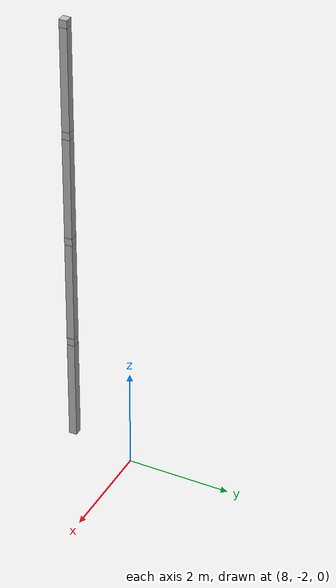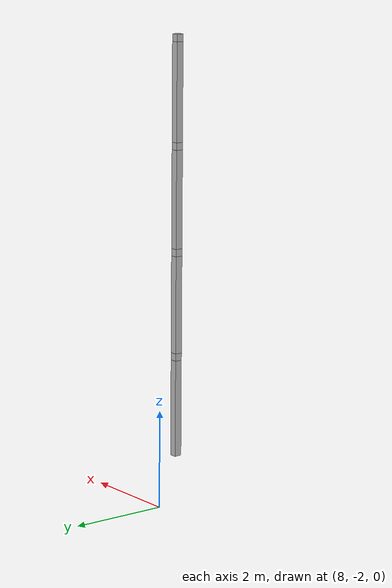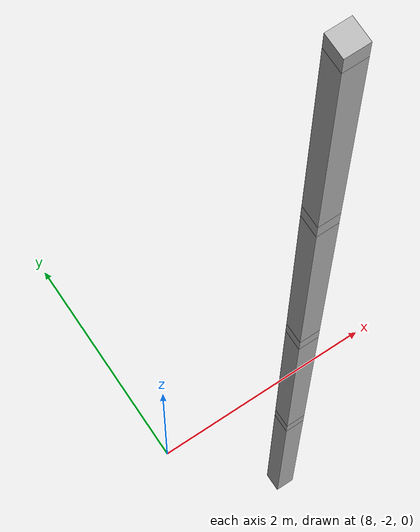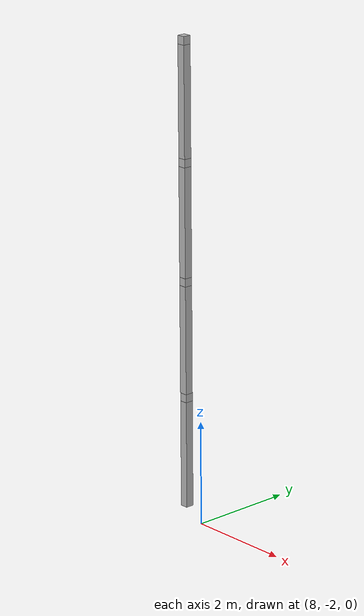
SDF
<sdf version="1.7">
 <world name="default">
  <model name="orthogonal_747_2.000.15_TS">
   <static>1</static>
   <link name="u_link_2_1_7">
    <inertial>
     <mass>1</mass>
     <inertia>
      <ixx>0.166667</ixx>
      <ixy>0</ixy>
      <ixz>0</ixz>
      <iyy>0.166667</iyy>
      <iyz>0</iyz>
      <izz>0.166667</izz>
     </inertia>
    </inertial>
    <pose>15.05 2.15 5.375 0 -0 0</pose>
    <visual name="visual_0">
     <laser_retro>2031</laser_retro>
     <geometry><box><size>0.15 1e-06 0.15</size></box></geometry>
     <material>
      <script><name>Gazebo/Grey</name><uri>file://media/materials/scripts/gazebo.material</uri></script>
      <shader type="pixel"><normal_map>__default__</normal_map></shader>
      <ambient>0.678 0.498 0.659 1</ambient>
      <diffuse>0.7 0.7 0.7 1</diffuse>
      <specular>0.01 0.01 0.01 1</specular>
      <emissive>0 0 0 1</emissive>
     </material>
     <pose>0 -0.075 0 0 -0 0</pose>
     <transparency>1</transparency>
    </visual>
    <visual name="visual_1">
     <laser_retro>2032</laser_retro>
     <geometry><box><size>0.15 1e-06 0.15</size></box></geometry>
     <material>
      <script><name>Gazebo/Grey</name><uri>file://media/materials/scripts/gazebo.material</uri></script>
      <shader type="pixel"><normal_map>__default__</normal_map></shader>
      <ambient>0.447 0.624 0.812 1</ambient>
      <diffuse>0.7 0.7 0.7 1</diffuse>
      <specular>0.01 0.01 0.01 1</specular>
      <emissive>0 0 0 1</emissive>
     </material>
     <pose>0 0.075 0 0 -0 0</pose>
     <transparency>1</transparency>
    </visual>
    <visual name="visual_2">
     <laser_retro>2033</laser_retro>
     <geometry><box><size>0.15 0.15 1e-06</size></box></geometry>
     <material>
      <script><name>Gazebo/Grey</name><uri>file://media/materials/scripts/gazebo.material</uri></script>
      <shader type="pixel"><normal_map>__default__</normal_map></shader>
      <ambient>0.988 0.686 0.243 1</ambient>
      <diffuse>0.7 0.7 0.7 1</diffuse>
      <specular>0.01 0.01 0.01 1</specular>
      <emissive>0 0 0 1</emissive>
     </material>
     <pose>0 0 -0.075 0 -0 0</pose>
     <transparency>1</transparency>
    </visual>
    <visual name="visual_3">
     <laser_retro>2034</laser_retro>
     <geometry><box><size>1e-06 0.15 0.15</size></box></geometry>
     <material>
      <script><name>Gazebo/Grey</name><uri>file://media/materials/scripts/gazebo.material</uri></script>
      <shader type="pixel"><normal_map>__default__</normal_map></shader>
      <ambient>0.988 0.914 0.31 1</ambient>
      <diffuse>0.7 0.7 0.7 1</diffuse>
      <specular>0.01 0.01 0.01 1</specular>
      <emissive>0 0 0 1</emissive>
     </material>
     <pose>0.075 0 0 0 -0 0</pose>
     <transparency>1</transparency>
    </visual>
    <visual name="visual_4">
     <laser_retro>2035</laser_retro>
     <geometry><box><size>0.15 0.15 1e-06</size></box></geometry>
     <material>
      <script><name>Gazebo/Grey</name><uri>file://media/materials/scripts/gazebo.material</uri></script>
      <shader type="pixel"><normal_map>__default__</normal_map></shader>
      <ambient>0.937 0.161 0.161 1</ambient>
      <diffuse>0.7 0.7 0.7 1</diffuse>
      <specular>0.01 0.01 0.01 1</specular>
      <emissive>0 0 0 1</emissive>
     </material>
     <pose>0 0 0.075 0 -0 0</pose>
     <transparency>1</transparency>
    </visual>
    <visual name="visual_5">
     <laser_retro>2036</laser_retro>
     <geometry><box><size>1e-06 0.15 0.15</size></box></geometry>
     <material>
      <script><name>Gazebo/Grey</name><uri>file://media/materials/scripts/gazebo.material</uri></script>
      <shader type="pixel"><normal_map>__default__</normal_map></shader>
      <ambient>0.541 0.886 0.204 1</ambient>
      <diffuse>0.7 0.7 0.7 1</diffuse>
      <specular>0.01 0.01 0.01 1</specular>
      <emissive>0 0 0 1</emissive>
     </material>
     <pose>-0.075 0 0 0 -0 0</pose>
     <transparency>1</transparency>
    </visual>
    <visual name="visual_texture">
     <geometry><box><size>0.149985 0.149985 0.149985</size></box></geometry>
     <material>
      <script>
       <uri>model://BASE_MODELS/simple_block_v2_textured/materials/scripts</uri>
       <uri>model://BASE_MODELS/simple_block_v2_textured/materials/textures</uri>
       <name>metal</name>
      </script>
     </material>
     <laser_retro>2037</laser_retro>
    </visual>
    <collision name="collision">
     <geometry><box><size>0.15 0.15 0.15</size></box></geometry>
     <surface>
      <friction>
       <ode><mu>1</mu><mu2>1</mu2><fdir1>0 0 0</fdir1><slip1>0</slip1><slip2>0</slip2></ode>
       <torsional>
        <coefficient>1</coefficient>
        <patch_radius>0</patch_radius>
        <surface_radius>0</surface_radius>
        <use_patch_radius>1</use_patch_radius>
        <ode><slip>0</slip></ode>
       </torsional>
      </friction>
      <bounce><restitution_coefficient>0</restitution_coefficient><threshold>1e+06</threshold></bounce>
      <contact>
       <collide_without_contact>0</collide_without_contact>
       <collide_without_contact_bitmask>1</collide_without_contact_bitmask>
       <collide_bitmask>1</collide_bitmask>
       <ode>
        <soft_cfm>0</soft_cfm>
        <soft_erp>0.2</soft_erp>
        <kp>1e+13</kp>
        <kd>1</kd>
        <max_vel>0.01</max_vel>
        <min_depth>0</min_depth>
       </ode>
       <bullet>
        <split_impulse>1</split_impulse>
        <split_impulse_penetration_threshold>-0.01</split_impulse_penetration_threshold>
        <soft_cfm>0</soft_cfm>
        <soft_erp>0.2</soft_erp>
        <kp>1e+13</kp>
        <kd>1</kd>
       </bullet>
      </contact>
     </surface>
    </collision>
   </link>
   <link name="z_link_2_1_7">
    <inertial>
     <mass>1</mass>
     <inertia>
      <ixx>0.166667</ixx>
      <ixy>0</ixy>
      <ixz>0</ixz>
      <iyy>0.166667</iyy>
      <iyz>0</iyz>
      <izz>0.166667</izz>
     </inertia>
    </inertial>
    <pose>15.05 2.15 4.3 0 -0 0</pose>
    <visual name="visual_0">
     <laser_retro>2038</laser_retro>
     <geometry><box><size>0.15 1e-06 2</size></box></geometry>
     <material>
      <script><name>Gazebo/Grey</name><uri>file://media/materials/scripts/gazebo.material</uri></script>
      <shader type="pixel"><normal_map>__default__</normal_map></shader>
      <ambient>0.678 0.498 0.659 1</ambient>
      <diffuse>0.7 0.7 0.7 1</diffuse>
      <specular>0.01 0.01 0.01 1</specular>
      <emissive>0 0 0 1</emissive>
     </material>
     <pose>0 -0.075 0 0 -0 0</pose>
     <transparency>1</transparency>
    </visual>
    <visual name="visual_1">
     <laser_retro>2039</laser_retro>
     <geometry><box><size>0.15 1e-06 2</size></box></geometry>
     <material>
      <script><name>Gazebo/Grey</name><uri>file://media/materials/scripts/gazebo.material</uri></script>
      <shader type="pixel"><normal_map>__default__</normal_map></shader>
      <ambient>0.447 0.624 0.812 1</ambient>
      <diffuse>0.7 0.7 0.7 1</diffuse>
      <specular>0.01 0.01 0.01 1</specular>
      <emissive>0 0 0 1</emissive>
     </material>
     <pose>0 0.075 0 0 -0 0</pose>
     <transparency>1</transparency>
    </visual>
    <visual name="visual_2">
     <laser_retro>2040</laser_retro>
     <geometry><box><size>0.15 0.15 1e-06</size></box></geometry>
     <material>
      <script><name>Gazebo/Grey</name><uri>file://media/materials/scripts/gazebo.material</uri></script>
      <shader type="pixel"><normal_map>__default__</normal_map></shader>
      <ambient>0.988 0.686 0.243 1</ambient>
      <diffuse>0.7 0.7 0.7 1</diffuse>
      <specular>0.01 0.01 0.01 1</specular>
      <emissive>0 0 0 1</emissive>
     </material>
     <pose>0 0 -1 0 -0 0</pose>
     <transparency>1</transparency>
    </visual>
    <visual name="visual_3">
     <laser_retro>2041</laser_retro>
     <geometry><box><size>1e-06 0.15 2</size></box></geometry>
     <material>
      <script><name>Gazebo/Grey</name><uri>file://media/materials/scripts/gazebo.material</uri></script>
      <shader type="pixel"><normal_map>__default__</normal_map></shader>
      <ambient>0.988 0.914 0.31 1</ambient>
      <diffuse>0.7 0.7 0.7 1</diffuse>
      <specular>0.01 0.01 0.01 1</specular>
      <emissive>0 0 0 1</emissive>
     </material>
     <pose>0.075 0 0 0 -0 0</pose>
     <transparency>1</transparency>
    </visual>
    <visual name="visual_4">
     <laser_retro>2042</laser_retro>
     <geometry><box><size>0.15 0.15 1e-06</size></box></geometry>
     <material>
      <script><name>Gazebo/Grey</name><uri>file://media/materials/scripts/gazebo.material</uri></script>
      <shader type="pixel"><normal_map>__default__</normal_map></shader>
      <ambient>0.937 0.161 0.161 1</ambient>
      <diffuse>0.7 0.7 0.7 1</diffuse>
      <specular>0.01 0.01 0.01 1</specular>
      <emissive>0 0 0 1</emissive>
     </material>
     <pose>0 0 1 0 -0 0</pose>
     <transparency>1</transparency>
    </visual>
    <visual name="visual_5">
     <laser_retro>2043</laser_retro>
     <geometry><box><size>1e-06 0.15 2</size></box></geometry>
     <material>
      <script><name>Gazebo/Grey</name><uri>file://media/materials/scripts/gazebo.material</uri></script>
      <shader type="pixel"><normal_map>__default__</normal_map></shader>
      <ambient>0.541 0.886 0.204 1</ambient>
      <diffuse>0.7 0.7 0.7 1</diffuse>
      <specular>0.01 0.01 0.01 1</specular>
      <emissive>0 0 0 1</emissive>
     </material>
     <pose>-0.075 0 0 0 -0 0</pose>
     <transparency>1</transparency>
    </visual>
    <visual name="visual_texture">
     <geometry><box><size>0.149985 0.149985 1.9998</size></box></geometry>
     <material>
      <script>
       <uri>model://BASE_MODELS/simple_block_v2_textured/materials/scripts</uri>
       <uri>model://BASE_MODELS/simple_block_v2_textured/materials/textures</uri>
       <name>metal</name>
      </script>
     </material>
     <laser_retro>2044</laser_retro>
    </visual>
    <collision name="collision">
     <geometry><box><size>0.15 0.15 2</size></box></geometry>
     <surface>
      <friction>
       <ode><mu>1</mu><mu2>1</mu2><fdir1>0 0 0</fdir1><slip1>0</slip1><slip2>0</slip2></ode>
       <torsional>
        <coefficient>1</coefficient>
        <patch_radius>0</patch_radius>
        <surface_radius>0</surface_radius>
        <use_patch_radius>1</use_patch_radius>
        <ode><slip>0</slip></ode>
       </torsional>
      </friction>
      <bounce><restitution_coefficient>0</restitution_coefficient><threshold>1e+06</threshold></bounce>
      <contact>
       <collide_without_contact>0</collide_without_contact>
       <collide_without_contact_bitmask>1</collide_without_contact_bitmask>
       <collide_bitmask>1</collide_bitmask>
       <ode>
        <soft_cfm>0</soft_cfm>
        <soft_erp>0.2</soft_erp>
        <kp>1e+13</kp>
        <kd>1</kd>
        <max_vel>0.01</max_vel>
        <min_depth>0</min_depth>
       </ode>
       <bullet>
        <split_impulse>1</split_impulse>
        <split_impulse_penetration_threshold>-0.01</split_impulse_penetration_threshold>
        <soft_cfm>0</soft_cfm>
        <soft_erp>0.2</soft_erp>
        <kp>1e+13</kp>
        <kd>1</kd>
       </bullet>
      </contact>
     </surface>
    </collision>
   </link>
   <link name="u_link_3_1_7">
    <inertial>
     <mass>1</mass>
     <inertia>
      <ixx>0.166667</ixx>
      <ixy>0</ixy>
      <ixz>0</ixz>
      <iyy>0.166667</iyy>
      <iyz>0</iyz>
      <izz>0.166667</izz>
     </inertia>
    </inertial>
    <pose>15.05 2.15 7.525 0 -0 0</pose>
    <visual name="visual_0">
     <laser_retro>2934</laser_retro>
     <geometry><box><size>0.15 1e-06 0.15</size></box></geometry>
     <material>
      <script><name>Gazebo/Grey</name><uri>file://media/materials/scripts/gazebo.material</uri></script>
      <shader type="pixel"><normal_map>__default__</normal_map></shader>
      <ambient>0.678 0.498 0.659 1</ambient>
      <diffuse>0.7 0.7 0.7 1</diffuse>
      <specular>0.01 0.01 0.01 1</specular>
      <emissive>0 0 0 1</emissive>
     </material>
     <pose>0 -0.075 0 0 -0 0</pose>
     <transparency>1</transparency>
    </visual>
    <visual name="visual_1">
     <laser_retro>2935</laser_retro>
     <geometry><box><size>0.15 1e-06 0.15</size></box></geometry>
     <material>
      <script><name>Gazebo/Grey</name><uri>file://media/materials/scripts/gazebo.material</uri></script>
      <shader type="pixel"><normal_map>__default__</normal_map></shader>
      <ambient>0.447 0.624 0.812 1</ambient>
      <diffuse>0.7 0.7 0.7 1</diffuse>
      <specular>0.01 0.01 0.01 1</specular>
      <emissive>0 0 0 1</emissive>
     </material>
     <pose>0 0.075 0 0 -0 0</pose>
     <transparency>1</transparency>
    </visual>
    <visual name="visual_2">
     <laser_retro>2936</laser_retro>
     <geometry><box><size>0.15 0.15 1e-06</size></box></geometry>
     <material>
      <script><name>Gazebo/Grey</name><uri>file://media/materials/scripts/gazebo.material</uri></script>
      <shader type="pixel"><normal_map>__default__</normal_map></shader>
      <ambient>0.988 0.686 0.243 1</ambient>
      <diffuse>0.7 0.7 0.7 1</diffuse>
      <specular>0.01 0.01 0.01 1</specular>
      <emissive>0 0 0 1</emissive>
     </material>
     <pose>0 0 -0.075 0 -0 0</pose>
     <transparency>1</transparency>
    </visual>
    <visual name="visual_3">
     <laser_retro>2937</laser_retro>
     <geometry><box><size>1e-06 0.15 0.15</size></box></geometry>
     <material>
      <script><name>Gazebo/Grey</name><uri>file://media/materials/scripts/gazebo.material</uri></script>
      <shader type="pixel"><normal_map>__default__</normal_map></shader>
      <ambient>0.988 0.914 0.31 1</ambient>
      <diffuse>0.7 0.7 0.7 1</diffuse>
      <specular>0.01 0.01 0.01 1</specular>
      <emissive>0 0 0 1</emissive>
     </material>
     <pose>0.075 0 0 0 -0 0</pose>
     <transparency>1</transparency>
    </visual>
    <visual name="visual_4">
     <laser_retro>2938</laser_retro>
     <geometry><box><size>0.15 0.15 1e-06</size></box></geometry>
     <material>
      <script><name>Gazebo/Grey</name><uri>file://media/materials/scripts/gazebo.material</uri></script>
      <shader type="pixel"><normal_map>__default__</normal_map></shader>
      <ambient>0.937 0.161 0.161 1</ambient>
      <diffuse>0.7 0.7 0.7 1</diffuse>
      <specular>0.01 0.01 0.01 1</specular>
      <emissive>0 0 0 1</emissive>
     </material>
     <pose>0 0 0.075 0 -0 0</pose>
     <transparency>1</transparency>
    </visual>
    <visual name="visual_5">
     <laser_retro>2939</laser_retro>
     <geometry><box><size>1e-06 0.15 0.15</size></box></geometry>
     <material>
      <script><name>Gazebo/Grey</name><uri>file://media/materials/scripts/gazebo.material</uri></script>
      <shader type="pixel"><normal_map>__default__</normal_map></shader>
      <ambient>0.541 0.886 0.204 1</ambient>
      <diffuse>0.7 0.7 0.7 1</diffuse>
      <specular>0.01 0.01 0.01 1</specular>
      <emissive>0 0 0 1</emissive>
     </material>
     <pose>-0.075 0 0 0 -0 0</pose>
     <transparency>1</transparency>
    </visual>
    <visual name="visual_texture">
     <geometry><box><size>0.149985 0.149985 0.149985</size></box></geometry>
     <material>
      <script>
       <uri>model://BASE_MODELS/simple_block_v2_textured/materials/scripts</uri>
       <uri>model://BASE_MODELS/simple_block_v2_textured/materials/textures</uri>
       <name>metal</name>
      </script>
     </material>
     <laser_retro>2940</laser_retro>
    </visual>
    <collision name="collision">
     <geometry><box><size>0.15 0.15 0.15</size></box></geometry>
     <surface>
      <friction>
       <ode><mu>1</mu><mu2>1</mu2><fdir1>0 0 0</fdir1><slip1>0</slip1><slip2>0</slip2></ode>
       <torsional>
        <coefficient>1</coefficient>
        <patch_radius>0</patch_radius>
        <surface_radius>0</surface_radius>
        <use_patch_radius>1</use_patch_radius>
        <ode><slip>0</slip></ode>
       </torsional>
      </friction>
      <bounce><restitution_coefficient>0</restitution_coefficient><threshold>1e+06</threshold></bounce>
      <contact>
       <collide_without_contact>0</collide_without_contact>
       <collide_without_contact_bitmask>1</collide_without_contact_bitmask>
       <collide_bitmask>1</collide_bitmask>
       <ode>
        <soft_cfm>0</soft_cfm>
        <soft_erp>0.2</soft_erp>
        <kp>1e+13</kp>
        <kd>1</kd>
        <max_vel>0.01</max_vel>
        <min_depth>0</min_depth>
       </ode>
       <bullet>
        <split_impulse>1</split_impulse>
        <split_impulse_penetration_threshold>-0.01</split_impulse_penetration_threshold>
        <soft_cfm>0</soft_cfm>
        <soft_erp>0.2</soft_erp>
        <kp>1e+13</kp>
        <kd>1</kd>
       </bullet>
      </contact>
     </surface>
    </collision>
   </link>
   <link name="z_link_3_1_7">
    <inertial>
     <mass>1</mass>
     <inertia>
      <ixx>0.166667</ixx>
      <ixy>0</ixy>
      <ixz>0</ixz>
      <iyy>0.166667</iyy>
      <iyz>0</iyz>
      <izz>0.166667</izz>
     </inertia>
    </inertial>
    <pose>15.05 2.15 6.45 0 -0 0</pose>
    <visual name="visual_0">
     <laser_retro>2941</laser_retro>
     <geometry><box><size>0.15 1e-06 2</size></box></geometry>
     <material>
      <script><name>Gazebo/Grey</name><uri>file://media/materials/scripts/gazebo.material</uri></script>
      <shader type="pixel"><normal_map>__default__</normal_map></shader>
      <ambient>0.678 0.498 0.659 1</ambient>
      <diffuse>0.7 0.7 0.7 1</diffuse>
      <specular>0.01 0.01 0.01 1</specular>
      <emissive>0 0 0 1</emissive>
     </material>
     <pose>0 -0.075 0 0 -0 0</pose>
     <transparency>1</transparency>
    </visual>
    <visual name="visual_1">
     <laser_retro>2942</laser_retro>
     <geometry><box><size>0.15 1e-06 2</size></box></geometry>
     <material>
      <script><name>Gazebo/Grey</name><uri>file://media/materials/scripts/gazebo.material</uri></script>
      <shader type="pixel"><normal_map>__default__</normal_map></shader>
      <ambient>0.447 0.624 0.812 1</ambient>
      <diffuse>0.7 0.7 0.7 1</diffuse>
      <specular>0.01 0.01 0.01 1</specular>
      <emissive>0 0 0 1</emissive>
     </material>
     <pose>0 0.075 0 0 -0 0</pose>
     <transparency>1</transparency>
    </visual>
    <visual name="visual_2">
     <laser_retro>2943</laser_retro>
     <geometry><box><size>0.15 0.15 1e-06</size></box></geometry>
     <material>
      <script><name>Gazebo/Grey</name><uri>file://media/materials/scripts/gazebo.material</uri></script>
      <shader type="pixel"><normal_map>__default__</normal_map></shader>
      <ambient>0.988 0.686 0.243 1</ambient>
      <diffuse>0.7 0.7 0.7 1</diffuse>
      <specular>0.01 0.01 0.01 1</specular>
      <emissive>0 0 0 1</emissive>
     </material>
     <pose>0 0 -1 0 -0 0</pose>
     <transparency>1</transparency>
    </visual>
    <visual name="visual_3">
     <laser_retro>2944</laser_retro>
     <geometry><box><size>1e-06 0.15 2</size></box></geometry>
     <material>
      <script><name>Gazebo/Grey</name><uri>file://media/materials/scripts/gazebo.material</uri></script>
      <shader type="pixel"><normal_map>__default__</normal_map></shader>
      <ambient>0.988 0.914 0.31 1</ambient>
      <diffuse>0.7 0.7 0.7 1</diffuse>
      <specular>0.01 0.01 0.01 1</specular>
      <emissive>0 0 0 1</emissive>
     </material>
     <pose>0.075 0 0 0 -0 0</pose>
     <transparency>1</transparency>
    </visual>
    <visual name="visual_4">
     <laser_retro>2945</laser_retro>
     <geometry><box><size>0.15 0.15 1e-06</size></box></geometry>
     <material>
      <script><name>Gazebo/Grey</name><uri>file://media/materials/scripts/gazebo.material</uri></script>
      <shader type="pixel"><normal_map>__default__</normal_map></shader>
      <ambient>0.937 0.161 0.161 1</ambient>
      <diffuse>0.7 0.7 0.7 1</diffuse>
      <specular>0.01 0.01 0.01 1</specular>
      <emissive>0 0 0 1</emissive>
     </material>
     <pose>0 0 1 0 -0 0</pose>
     <transparency>1</transparency>
    </visual>
    <visual name="visual_5">
     <laser_retro>2946</laser_retro>
     <geometry><box><size>1e-06 0.15 2</size></box></geometry>
     <material>
      <script><name>Gazebo/Grey</name><uri>file://media/materials/scripts/gazebo.material</uri></script>
      <shader type="pixel"><normal_map>__default__</normal_map></shader>
      <ambient>0.541 0.886 0.204 1</ambient>
      <diffuse>0.7 0.7 0.7 1</diffuse>
      <specular>0.01 0.01 0.01 1</specular>
      <emissive>0 0 0 1</emissive>
     </material>
     <pose>-0.075 0 0 0 -0 0</pose>
     <transparency>1</transparency>
    </visual>
    <visual name="visual_texture">
     <geometry><box><size>0.149985 0.149985 1.9998</size></box></geometry>
     <material>
      <script>
       <uri>model://BASE_MODELS/simple_block_v2_textured/materials/scripts</uri>
       <uri>model://BASE_MODELS/simple_block_v2_textured/materials/textures</uri>
       <name>metal</name>
      </script>
     </material>
     <laser_retro>2947</laser_retro>
    </visual>
    <collision name="collision">
     <geometry><box><size>0.15 0.15 2</size></box></geometry>
     <surface>
      <friction>
       <ode><mu>1</mu><mu2>1</mu2><fdir1>0 0 0</fdir1><slip1>0</slip1><slip2>0</slip2></ode>
       <torsional>
        <coefficient>1</coefficient>
        <patch_radius>0</patch_radius>
        <surface_radius>0</surface_radius>
        <use_patch_radius>1</use_patch_radius>
        <ode><slip>0</slip></ode>
       </torsional>
      </friction>
      <bounce><restitution_coefficient>0</restitution_coefficient><threshold>1e+06</threshold></bounce>
      <contact>
       <collide_without_contact>0</collide_without_contact>
       <collide_without_contact_bitmask>1</collide_without_contact_bitmask>
       <collide_bitmask>1</collide_bitmask>
       <ode>
        <soft_cfm>0</soft_cfm>
        <soft_erp>0.2</soft_erp>
        <kp>1e+13</kp>
        <kd>1</kd>
        <max_vel>0.01</max_vel>
        <min_depth>0</min_depth>
       </ode>
       <bullet>
        <split_impulse>1</split_impulse>
        <split_impulse_penetration_threshold>-0.01</split_impulse_penetration_threshold>
        <soft_cfm>0</soft_cfm>
        <soft_erp>0.2</soft_erp>
        <kp>1e+13</kp>
        <kd>1</kd>
       </bullet>
      </contact>
     </surface>
    </collision>
   </link>
   <link name="u_link_4_1_7">
    <inertial>
     <mass>1</mass>
     <inertia>
      <ixx>0.166667</ixx>
      <ixy>0</ixy>
      <ixz>0</ixz>
      <iyy>0.166667</iyy>
      <iyz>0</iyz>
      <izz>0.166667</izz>
     </inertia>
    </inertial>
    <pose>15.05 2.15 9.675 0 -0 0</pose>
    <visual name="visual_0">
     <laser_retro>3837</laser_retro>
     <geometry><box><size>0.15 1e-06 0.15</size></box></geometry>
     <material>
      <script><name>Gazebo/Grey</name><uri>file://media/materials/scripts/gazebo.material</uri></script>
      <shader type="pixel"><normal_map>__default__</normal_map></shader>
      <ambient>0.678 0.498 0.659 1</ambient>
      <diffuse>0.7 0.7 0.7 1</diffuse>
      <specular>0.01 0.01 0.01 1</specular>
      <emissive>0 0 0 1</emissive>
     </material>
     <pose>0 -0.075 0 0 -0 0</pose>
     <transparency>1</transparency>
    </visual>
    <visual name="visual_1">
     <laser_retro>3838</laser_retro>
     <geometry><box><size>0.15 1e-06 0.15</size></box></geometry>
     <material>
      <script><name>Gazebo/Grey</name><uri>file://media/materials/scripts/gazebo.material</uri></script>
      <shader type="pixel"><normal_map>__default__</normal_map></shader>
      <ambient>0.447 0.624 0.812 1</ambient>
      <diffuse>0.7 0.7 0.7 1</diffuse>
      <specular>0.01 0.01 0.01 1</specular>
      <emissive>0 0 0 1</emissive>
     </material>
     <pose>0 0.075 0 0 -0 0</pose>
     <transparency>1</transparency>
    </visual>
    <visual name="visual_2">
     <laser_retro>3839</laser_retro>
     <geometry><box><size>0.15 0.15 1e-06</size></box></geometry>
     <material>
      <script><name>Gazebo/Grey</name><uri>file://media/materials/scripts/gazebo.material</uri></script>
      <shader type="pixel"><normal_map>__default__</normal_map></shader>
      <ambient>0.988 0.686 0.243 1</ambient>
      <diffuse>0.7 0.7 0.7 1</diffuse>
      <specular>0.01 0.01 0.01 1</specular>
      <emissive>0 0 0 1</emissive>
     </material>
     <pose>0 0 -0.075 0 -0 0</pose>
     <transparency>1</transparency>
    </visual>
    <visual name="visual_3">
     <laser_retro>3840</laser_retro>
     <geometry><box><size>1e-06 0.15 0.15</size></box></geometry>
     <material>
      <script><name>Gazebo/Grey</name><uri>file://media/materials/scripts/gazebo.material</uri></script>
      <shader type="pixel"><normal_map>__default__</normal_map></shader>
      <ambient>0.988 0.914 0.31 1</ambient>
      <diffuse>0.7 0.7 0.7 1</diffuse>
      <specular>0.01 0.01 0.01 1</specular>
      <emissive>0 0 0 1</emissive>
     </material>
     <pose>0.075 0 0 0 -0 0</pose>
     <transparency>1</transparency>
    </visual>
    <visual name="visual_4">
     <laser_retro>3841</laser_retro>
     <geometry><box><size>0.15 0.15 1e-06</size></box></geometry>
     <material>
      <script><name>Gazebo/Grey</name><uri>file://media/materials/scripts/gazebo.material</uri></script>
      <shader type="pixel"><normal_map>__default__</normal_map></shader>
      <ambient>0.937 0.161 0.161 1</ambient>
      <diffuse>0.7 0.7 0.7 1</diffuse>
      <specular>0.01 0.01 0.01 1</specular>
      <emissive>0 0 0 1</emissive>
     </material>
     <pose>0 0 0.075 0 -0 0</pose>
     <transparency>1</transparency>
    </visual>
    <visual name="visual_5">
     <laser_retro>3842</laser_retro>
     <geometry><box><size>1e-06 0.15 0.15</size></box></geometry>
     <material>
      <script><name>Gazebo/Grey</name><uri>file://media/materials/scripts/gazebo.material</uri></script>
      <shader type="pixel"><normal_map>__default__</normal_map></shader>
      <ambient>0.541 0.886 0.204 1</ambient>
      <diffuse>0.7 0.7 0.7 1</diffuse>
      <specular>0.01 0.01 0.01 1</specular>
      <emissive>0 0 0 1</emissive>
     </material>
     <pose>-0.075 0 0 0 -0 0</pose>
     <transparency>1</transparency>
    </visual>
    <visual name="visual_texture">
     <geometry><box><size>0.149985 0.149985 0.149985</size></box></geometry>
     <material>
      <script>
       <uri>model://BASE_MODELS/simple_block_v2_textured/materials/scripts</uri>
       <uri>model://BASE_MODELS/simple_block_v2_textured/materials/textures</uri>
       <name>metal</name>
      </script>
     </material>
     <laser_retro>3843</laser_retro>
    </visual>
    <collision name="collision">
     <geometry><box><size>0.15 0.15 0.15</size></box></geometry>
     <surface>
      <friction>
       <ode><mu>1</mu><mu2>1</mu2><fdir1>0 0 0</fdir1><slip1>0</slip1><slip2>0</slip2></ode>
       <torsional>
        <coefficient>1</coefficient>
        <patch_radius>0</patch_radius>
        <surface_radius>0</surface_radius>
        <use_patch_radius>1</use_patch_radius>
        <ode><slip>0</slip></ode>
       </torsional>
      </friction>
      <bounce><restitution_coefficient>0</restitution_coefficient><threshold>1e+06</threshold></bounce>
      <contact>
       <collide_without_contact>0</collide_without_contact>
       <collide_without_contact_bitmask>1</collide_without_contact_bitmask>
       <collide_bitmask>1</collide_bitmask>
       <ode>
        <soft_cfm>0</soft_cfm>
        <soft_erp>0.2</soft_erp>
        <kp>1e+13</kp>
        <kd>1</kd>
        <max_vel>0.01</max_vel>
        <min_depth>0</min_depth>
       </ode>
       <bullet>
        <split_impulse>1</split_impulse>
        <split_impulse_penetration_threshold>-0.01</split_impulse_penetration_threshold>
        <soft_cfm>0</soft_cfm>
        <soft_erp>0.2</soft_erp>
        <kp>1e+13</kp>
        <kd>1</kd>
       </bullet>
      </contact>
     </surface>
    </collision>
   </link>
   <link name="z_link_4_1_7">
    <inertial>
     <mass>1</mass>
     <inertia>
      <ixx>0.166667</ixx>
      <ixy>0</ixy>
      <ixz>0</ixz>
      <iyy>0.166667</iyy>
      <iyz>0</iyz>
      <izz>0.166667</izz>
     </inertia>
    </inertial>
    <pose>15.05 2.15 8.6 0 -0 0</pose>
    <visual name="visual_0">
     <laser_retro>3844</laser_retro>
     <geometry><box><size>0.15 1e-06 2</size></box></geometry>
     <material>
      <script><name>Gazebo/Grey</name><uri>file://media/materials/scripts/gazebo.material</uri></script>
      <shader type="pixel"><normal_map>__default__</normal_map></shader>
      <ambient>0.678 0.498 0.659 1</ambient>
      <diffuse>0.7 0.7 0.7 1</diffuse>
      <specular>0.01 0.01 0.01 1</specular>
      <emissive>0 0 0 1</emissive>
     </material>
     <pose>0 -0.075 0 0 -0 0</pose>
     <transparency>1</transparency>
    </visual>
    <visual name="visual_1">
     <laser_retro>3845</laser_retro>
     <geometry><box><size>0.15 1e-06 2</size></box></geometry>
     <material>
      <script><name>Gazebo/Grey</name><uri>file://media/materials/scripts/gazebo.material</uri></script>
      <shader type="pixel"><normal_map>__default__</normal_map></shader>
      <ambient>0.447 0.624 0.812 1</ambient>
      <diffuse>0.7 0.7 0.7 1</diffuse>
      <specular>0.01 0.01 0.01 1</specular>
      <emissive>0 0 0 1</emissive>
     </material>
     <pose>0 0.075 0 0 -0 0</pose>
     <transparency>1</transparency>
    </visual>
    <visual name="visual_2">
     <laser_retro>3846</laser_retro>
     <geometry><box><size>0.15 0.15 1e-06</size></box></geometry>
     <material>
      <script><name>Gazebo/Grey</name><uri>file://media/materials/scripts/gazebo.material</uri></script>
      <shader type="pixel"><normal_map>__default__</normal_map></shader>
      <ambient>0.988 0.686 0.243 1</ambient>
      <diffuse>0.7 0.7 0.7 1</diffuse>
      <specular>0.01 0.01 0.01 1</specular>
      <emissive>0 0 0 1</emissive>
     </material>
     <pose>0 0 -1 0 -0 0</pose>
     <transparency>1</transparency>
    </visual>
    <visual name="visual_3">
     <laser_retro>3847</laser_retro>
     <geometry><box><size>1e-06 0.15 2</size></box></geometry>
     <material>
      <script><name>Gazebo/Grey</name><uri>file://media/materials/scripts/gazebo.material</uri></script>
      <shader type="pixel"><normal_map>__default__</normal_map></shader>
      <ambient>0.988 0.914 0.31 1</ambient>
      <diffuse>0.7 0.7 0.7 1</diffuse>
      <specular>0.01 0.01 0.01 1</specular>
      <emissive>0 0 0 1</emissive>
     </material>
     <pose>0.075 0 0 0 -0 0</pose>
     <transparency>1</transparency>
    </visual>
    <visual name="visual_4">
     <laser_retro>3848</laser_retro>
     <geometry><box><size>0.15 0.15 1e-06</size></box></geometry>
     <material>
      <script><name>Gazebo/Grey</name><uri>file://media/materials/scripts/gazebo.material</uri></script>
      <shader type="pixel"><normal_map>__default__</normal_map></shader>
      <ambient>0.937 0.161 0.161 1</ambient>
      <diffuse>0.7 0.7 0.7 1</diffuse>
      <specular>0.01 0.01 0.01 1</specular>
      <emissive>0 0 0 1</emissive>
     </material>
     <pose>0 0 1 0 -0 0</pose>
     <transparency>1</transparency>
    </visual>
    <visual name="visual_5">
     <laser_retro>3849</laser_retro>
     <geometry><box><size>1e-06 0.15 2</size></box></geometry>
     <material>
      <script><name>Gazebo/Grey</name><uri>file://media/materials/scripts/gazebo.material</uri></script>
      <shader type="pixel"><normal_map>__default__</normal_map></shader>
      <ambient>0.541 0.886 0.204 1</ambient>
      <diffuse>0.7 0.7 0.7 1</diffuse>
      <specular>0.01 0.01 0.01 1</specular>
      <emissive>0 0 0 1</emissive>
     </material>
     <pose>-0.075 0 0 0 -0 0</pose>
     <transparency>1</transparency>
    </visual>
    <visual name="visual_texture">
     <geometry><box><size>0.149985 0.149985 1.9998</size></box></geometry>
     <material>
      <script>
       <uri>model://BASE_MODELS/simple_block_v2_textured/materials/scripts</uri>
       <uri>model://BASE_MODELS/simple_block_v2_textured/materials/textures</uri>
       <name>metal</name>
      </script>
     </material>
     <laser_retro>3850</laser_retro>
    </visual>
    <collision name="collision">
     <geometry><box><size>0.15 0.15 2</size></box></geometry>
     <surface>
      <friction>
       <ode><mu>1</mu><mu2>1</mu2><fdir1>0 0 0</fdir1><slip1>0</slip1><slip2>0</slip2></ode>
       <torsional>
        <coefficient>1</coefficient>
        <patch_radius>0</patch_radius>
        <surface_radius>0</surface_radius>
        <use_patch_radius>1</use_patch_radius>
        <ode><slip>0</slip></ode>
       </torsional>
      </friction>
      <bounce><restitution_coefficient>0</restitution_coefficient><threshold>1e+06</threshold></bounce>
      <contact>
       <collide_without_contact>0</collide_without_contact>
       <collide_without_contact_bitmask>1</collide_without_contact_bitmask>
       <collide_bitmask>1</collide_bitmask>
       <ode>
        <soft_cfm>0</soft_cfm>
        <soft_erp>0.2</soft_erp>
        <kp>1e+13</kp>
        <kd>1</kd>
        <max_vel>0.01</max_vel>
        <min_depth>0</min_depth>
       </ode>
       <bullet>
        <split_impulse>1</split_impulse>
        <split_impulse_penetration_threshold>-0.01</split_impulse_penetration_threshold>
        <soft_cfm>0</soft_cfm>
        <soft_erp>0.2</soft_erp>
        <kp>1e+13</kp>
        <kd>1</kd>
       </bullet>
      </contact>
     </surface>
    </collision>
   </link>
   <link name="u_link_5_1_7">
    <inertial>
     <mass>1</mass>
     <inertia>
      <ixx>0.166667</ixx>
      <ixy>0</ixy>
      <ixz>0</ixz>
      <iyy>0.166667</iyy>
      <iyz>0</iyz>
      <izz>0.166667</izz>
     </inertia>
    </inertial>
    <pose>15.05 2.15 11.825 0 -0 0</pose>
    <visual name="visual_0">
     <laser_retro>4740</laser_retro>
     <geometry><box><size>0.15 1e-06 0.15</size></box></geometry>
     <material>
      <script><name>Gazebo/Grey</name><uri>file://media/materials/scripts/gazebo.material</uri></script>
      <shader type="pixel"><normal_map>__default__</normal_map></shader>
      <ambient>0.678 0.498 0.659 1</ambient>
      <diffuse>0.7 0.7 0.7 1</diffuse>
      <specular>0.01 0.01 0.01 1</specular>
      <emissive>0 0 0 1</emissive>
     </material>
     <pose>0 -0.075 0 0 -0 0</pose>
     <transparency>1</transparency>
    </visual>
    <visual name="visual_1">
     <laser_retro>4741</laser_retro>
     <geometry><box><size>0.15 1e-06 0.15</size></box></geometry>
     <material>
      <script><name>Gazebo/Grey</name><uri>file://media/materials/scripts/gazebo.material</uri></script>
      <shader type="pixel"><normal_map>__default__</normal_map></shader>
      <ambient>0.447 0.624 0.812 1</ambient>
      <diffuse>0.7 0.7 0.7 1</diffuse>
      <specular>0.01 0.01 0.01 1</specular>
      <emissive>0 0 0 1</emissive>
     </material>
     <pose>0 0.075 0 0 -0 0</pose>
     <transparency>1</transparency>
    </visual>
    <visual name="visual_2">
     <laser_retro>4742</laser_retro>
     <geometry><box><size>0.15 0.15 1e-06</size></box></geometry>
     <material>
      <script><name>Gazebo/Grey</name><uri>file://media/materials/scripts/gazebo.material</uri></script>
      <shader type="pixel"><normal_map>__default__</normal_map></shader>
      <ambient>0.988 0.686 0.243 1</ambient>
      <diffuse>0.7 0.7 0.7 1</diffuse>
      <specular>0.01 0.01 0.01 1</specular>
      <emissive>0 0 0 1</emissive>
     </material>
     <pose>0 0 -0.075 0 -0 0</pose>
     <transparency>1</transparency>
    </visual>
    <visual name="visual_3">
     <laser_retro>4743</laser_retro>
     <geometry><box><size>1e-06 0.15 0.15</size></box></geometry>
     <material>
      <script><name>Gazebo/Grey</name><uri>file://media/materials/scripts/gazebo.material</uri></script>
      <shader type="pixel"><normal_map>__default__</normal_map></shader>
      <ambient>0.988 0.914 0.31 1</ambient>
      <diffuse>0.7 0.7 0.7 1</diffuse>
      <specular>0.01 0.01 0.01 1</specular>
      <emissive>0 0 0 1</emissive>
     </material>
     <pose>0.075 0 0 0 -0 0</pose>
     <transparency>1</transparency>
    </visual>
    <visual name="visual_4">
     <laser_retro>4744</laser_retro>
     <geometry><box><size>0.15 0.15 1e-06</size></box></geometry>
     <material>
      <script><name>Gazebo/Grey</name><uri>file://media/materials/scripts/gazebo.material</uri></script>
      <shader type="pixel"><normal_map>__default__</normal_map></shader>
      <ambient>0.937 0.161 0.161 1</ambient>
      <diffuse>0.7 0.7 0.7 1</diffuse>
      <specular>0.01 0.01 0.01 1</specular>
      <emissive>0 0 0 1</emissive>
     </material>
     <pose>0 0 0.075 0 -0 0</pose>
     <transparency>1</transparency>
    </visual>
    <visual name="visual_5">
     <laser_retro>4745</laser_retro>
     <geometry><box><size>1e-06 0.15 0.15</size></box></geometry>
     <material>
      <script><name>Gazebo/Grey</name><uri>file://media/materials/scripts/gazebo.material</uri></script>
      <shader type="pixel"><normal_map>__default__</normal_map></shader>
      <ambient>0.541 0.886 0.204 1</ambient>
      <diffuse>0.7 0.7 0.7 1</diffuse>
      <specular>0.01 0.01 0.01 1</specular>
      <emissive>0 0 0 1</emissive>
     </material>
     <pose>-0.075 0 0 0 -0 0</pose>
     <transparency>1</transparency>
    </visual>
    <visual name="visual_texture">
     <geometry><box><size>0.149985 0.149985 0.149985</size></box></geometry>
     <material>
      <script>
       <uri>model://BASE_MODELS/simple_block_v2_textured/materials/scripts</uri>
       <uri>model://BASE_MODELS/simple_block_v2_textured/materials/textures</uri>
       <name>metal</name>
      </script>
     </material>
     <laser_retro>4746</laser_retro>
    </visual>
    <collision name="collision">
     <geometry><box><size>0.15 0.15 0.15</size></box></geometry>
     <surface>
      <friction>
       <ode><mu>1</mu><mu2>1</mu2><fdir1>0 0 0</fdir1><slip1>0</slip1><slip2>0</slip2></ode>
       <torsional>
        <coefficient>1</coefficient>
        <patch_radius>0</patch_radius>
        <surface_radius>0</surface_radius>
        <use_patch_radius>1</use_patch_radius>
        <ode><slip>0</slip></ode>
       </torsional>
      </friction>
      <bounce><restitution_coefficient>0</restitution_coefficient><threshold>1e+06</threshold></bounce>
      <contact>
       <collide_without_contact>0</collide_without_contact>
       <collide_without_contact_bitmask>1</collide_without_contact_bitmask>
       <collide_bitmask>1</collide_bitmask>
       <ode>
        <soft_cfm>0</soft_cfm>
        <soft_erp>0.2</soft_erp>
        <kp>1e+13</kp>
        <kd>1</kd>
        <max_vel>0.01</max_vel>
        <min_depth>0</min_depth>
       </ode>
       <bullet>
        <split_impulse>1</split_impulse>
        <split_impulse_penetration_threshold>-0.01</split_impulse_penetration_threshold>
        <soft_cfm>0</soft_cfm>
        <soft_erp>0.2</soft_erp>
        <kp>1e+13</kp>
        <kd>1</kd>
       </bullet>
      </contact>
     </surface>
    </collision>
   </link>
   <link name="z_link_5_1_7">
    <inertial>
     <mass>1</mass>
     <inertia>
      <ixx>0.166667</ixx>
      <ixy>0</ixy>
      <ixz>0</ixz>
      <iyy>0.166667</iyy>
      <iyz>0</iyz>
      <izz>0.166667</izz>
     </inertia>
    </inertial>
    <pose>15.05 2.15 10.75 0 -0 0</pose>
    <visual name="visual_0">
     <laser_retro>4747</laser_retro>
     <geometry><box><size>0.15 1e-06 2</size></box></geometry>
     <material>
      <script><name>Gazebo/Grey</name><uri>file://media/materials/scripts/gazebo.material</uri></script>
      <shader type="pixel"><normal_map>__default__</normal_map></shader>
      <ambient>0.678 0.498 0.659 1</ambient>
      <diffuse>0.7 0.7 0.7 1</diffuse>
      <specular>0.01 0.01 0.01 1</specular>
      <emissive>0 0 0 1</emissive>
     </material>
     <pose>0 -0.075 0 0 -0 0</pose>
     <transparency>1</transparency>
    </visual>
    <visual name="visual_1">
     <laser_retro>4748</laser_retro>
     <geometry><box><size>0.15 1e-06 2</size></box></geometry>
     <material>
      <script><name>Gazebo/Grey</name><uri>file://media/materials/scripts/gazebo.material</uri></script>
      <shader type="pixel"><normal_map>__default__</normal_map></shader>
      <ambient>0.447 0.624 0.812 1</ambient>
      <diffuse>0.7 0.7 0.7 1</diffuse>
      <specular>0.01 0.01 0.01 1</specular>
      <emissive>0 0 0 1</emissive>
     </material>
     <pose>0 0.075 0 0 -0 0</pose>
     <transparency>1</transparency>
    </visual>
    <visual name="visual_2">
     <laser_retro>4749</laser_retro>
     <geometry><box><size>0.15 0.15 1e-06</size></box></geometry>
     <material>
      <script><name>Gazebo/Grey</name><uri>file://media/materials/scripts/gazebo.material</uri></script>
      <shader type="pixel"><normal_map>__default__</normal_map></shader>
      <ambient>0.988 0.686 0.243 1</ambient>
      <diffuse>0.7 0.7 0.7 1</diffuse>
      <specular>0.01 0.01 0.01 1</specular>
      <emissive>0 0 0 1</emissive>
     </material>
     <pose>0 0 -1 0 -0 0</pose>
     <transparency>1</transparency>
    </visual>
    <visual name="visual_3">
     <laser_retro>4750</laser_retro>
     <geometry><box><size>1e-06 0.15 2</size></box></geometry>
     <material>
      <script><name>Gazebo/Grey</name><uri>file://media/materials/scripts/gazebo.material</uri></script>
      <shader type="pixel"><normal_map>__default__</normal_map></shader>
      <ambient>0.988 0.914 0.31 1</ambient>
      <diffuse>0.7 0.7 0.7 1</diffuse>
      <specular>0.01 0.01 0.01 1</specular>
      <emissive>0 0 0 1</emissive>
     </material>
     <pose>0.075 0 0 0 -0 0</pose>
     <transparency>1</transparency>
    </visual>
    <visual name="visual_4">
     <laser_retro>4751</laser_retro>
     <geometry><box><size>0.15 0.15 1e-06</size></box></geometry>
     <material>
      <script><name>Gazebo/Grey</name><uri>file://media/materials/scripts/gazebo.material</uri></script>
      <shader type="pixel"><normal_map>__default__</normal_map></shader>
      <ambient>0.937 0.161 0.161 1</ambient>
      <diffuse>0.7 0.7 0.7 1</diffuse>
      <specular>0.01 0.01 0.01 1</specular>
      <emissive>0 0 0 1</emissive>
     </material>
     <pose>0 0 1 0 -0 0</pose>
     <transparency>1</transparency>
    </visual>
    <visual name="visual_5">
     <laser_retro>4752</laser_retro>
     <geometry><box><size>1e-06 0.15 2</size></box></geometry>
     <material>
      <script><name>Gazebo/Grey</name><uri>file://media/materials/scripts/gazebo.material</uri></script>
      <shader type="pixel"><normal_map>__default__</normal_map></shader>
      <ambient>0.541 0.886 0.204 1</ambient>
      <diffuse>0.7 0.7 0.7 1</diffuse>
      <specular>0.01 0.01 0.01 1</specular>
      <emissive>0 0 0 1</emissive>
     </material>
     <pose>-0.075 0 0 0 -0 0</pose>
     <transparency>1</transparency>
    </visual>
    <visual name="visual_texture">
     <geometry><box><size>0.149985 0.149985 1.9998</size></box></geometry>
     <material>
      <script>
       <uri>model://BASE_MODELS/simple_block_v2_textured/materials/scripts</uri>
       <uri>model://BASE_MODELS/simple_block_v2_textured/materials/textures</uri>
       <name>metal</name>
      </script>
     </material>
     <laser_retro>4753</laser_retro>
    </visual>
    <collision name="collision">
     <geometry><box><size>0.15 0.15 2</size></box></geometry>
     <surface>
      <friction>
       <ode><mu>1</mu><mu2>1</mu2><fdir1>0 0 0</fdir1><slip1>0</slip1><slip2>0</slip2></ode>
       <torsional>
        <coefficient>1</coefficient>
        <patch_radius>0</patch_radius>
        <surface_radius>0</surface_radius>
        <use_patch_radius>1</use_patch_radius>
        <ode><slip>0</slip></ode>
       </torsional>
      </friction>
      <bounce><restitution_coefficient>0</restitution_coefficient><threshold>1e+06</threshold></bounce>
      <contact>
       <collide_without_contact>0</collide_without_contact>
       <collide_without_contact_bitmask>1</collide_without_contact_bitmask>
       <collide_bitmask>1</collide_bitmask>
       <ode>
        <soft_cfm>0</soft_cfm>
        <soft_erp>0.2</soft_erp>
        <kp>1e+13</kp>
        <kd>1</kd>
        <max_vel>0.01</max_vel>
        <min_depth>0</min_depth>
       </ode>
       <bullet>
        <split_impulse>1</split_impulse>
        <split_impulse_penetration_threshold>-0.01</split_impulse_penetration_threshold>
        <soft_cfm>0</soft_cfm>
        <soft_erp>0.2</soft_erp>
        <kp>1e+13</kp>
        <kd>1</kd>
       </bullet>
      </contact>
     </surface>
    </collision>
   </link>
   <pose>-6.47624 -5 -2.5 0 -0 0</pose>
  </model>
 </world>
</sdf>
